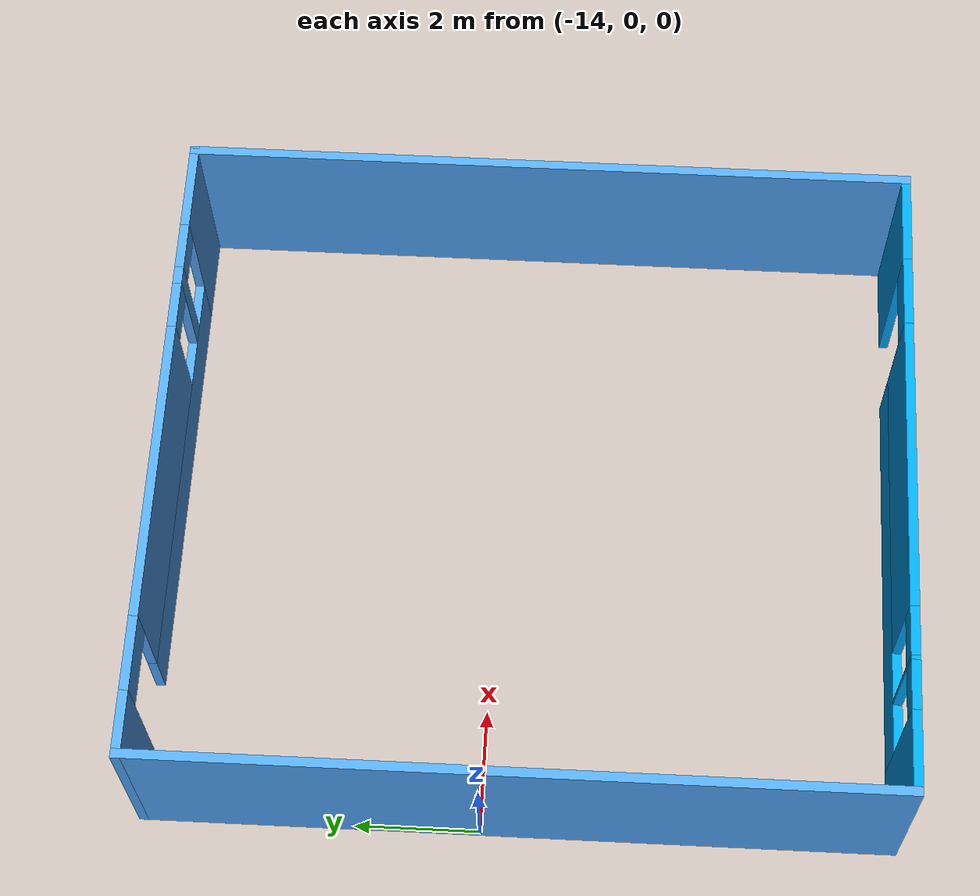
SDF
<?xml version='1.0'?>
<sdf version='1.6'>
  <model name='bluehouse'>
    <pose frame=''>-8.678 -0.573 0 0 -0 0</pose>
    <link name='Wall_5'>
      <collision name='Wall_5_Collision'>
        <geometry>
          <box>
            <size>12 0.15 3</size>
          </box>
        </geometry>
        <pose frame=''>0 0 1.5 0 -0 0</pose>
      </collision>
      <visual name='Wall_5_Visual'>
        <pose frame=''>0 0 1.5 0 -0 0</pose>
        <geometry>
          <box>
            <size>12 0.15 3</size>
          </box>
        </geometry>
        <material>
          <script>
            <uri>file://media/materials/scripts/gazebo.material</uri>
            <name>Gazebo/Grey</name>
          </script>
          <ambient>0.333333 0.666667 1 1</ambient>
        </material>
        <meta>
          <layer>0</layer>
        </meta>
      </visual>
      <pose frame=''>-5.3 0 0 0 0 -1.5708</pose>
    </link>
    <link name='Wall_6'>
      <pose frame=''>-1e-06 -5.925 0 0 -0 0</pose>
      <visual name='Wall_6_Visual_0'>
        <pose frame=''>-4.69968 0 1.5 0 -0 0</pose>
        <geometry>
          <box>
            <size>1.35065 0.15 3</size>
          </box>
        </geometry>
        <material>
          <script>
            <uri>file://media/materials/scripts/gazebo.material</uri>
            <name>Gazebo/Grey</name>
          </script>
          <ambient>0 0.666667 1 1</ambient>
        </material>
        <meta>
          <layer>0</layer>
        </meta>
      </visual>
      <collision name='Wall_6_Collision_0'>
        <geometry>
          <box>
            <size>1.35065 0.15 3</size>
          </box>
        </geometry>
        <pose frame=''>-4.69968 0 1.5 0 -0 0</pose>
      </collision>
      <visual name='Wall_6_Visual_1'>
        <pose frame=''>4.574 0 1.5 0 -0 0</pose>
        <geometry>
          <box>
            <size>1.602 0.15 3</size>
          </box>
        </geometry>
        <material>
          <script>
            <uri>file://media/materials/scripts/gazebo.material</uri>
            <name>Gazebo/Grey</name>
          </script>
          <ambient>0 0.666667 1 1</ambient>
        </material>
        <meta>
          <layer>0</layer>
        </meta>
      </visual>
      <collision name='Wall_6_Collision_1'>
        <geometry>
          <box>
            <size>1.602 0.15 3</size>
          </box>
        </geometry>
        <pose frame=''>4.574 0 1.5 0 -0 0</pose>
      </collision>
      <visual name='Wall_6_Visual_2'>
        <pose frame=''>-0.725675 0 0.5 0 -0 0</pose>
        <geometry>
          <box>
            <size>6.59735 0.15 1</size>
          </box>
        </geometry>
        <material>
          <script>
            <uri>file://media/materials/scripts/gazebo.material</uri>
            <name>Gazebo/Grey</name>
          </script>
          <ambient>0 0.666667 1 1</ambient>
        </material>
        <meta>
          <layer>0</layer>
        </meta>
      </visual>
      <collision name='Wall_6_Collision_2'>
        <geometry>
          <box>
            <size>6.59735 0.15 1</size>
          </box>
        </geometry>
        <pose frame=''>-0.725675 0 0.5 0 -0 0</pose>
      </collision>
      <visual name='Wall_6_Visual_3'>
        <pose frame=''>-3.18814 0 2 0 -0 0</pose>
        <geometry>
          <box>
            <size>0.072422 0.15 2</size>
          </box>
        </geometry>
        <material>
          <script>
            <uri>file://media/materials/scripts/gazebo.material</uri>
            <name>Gazebo/Grey</name>
          </script>
          <ambient>0 0.666667 1 1</ambient>
        </material>
        <meta>
          <layer>0</layer>
        </meta>
      </visual>
      <collision name='Wall_6_Collision_3'>
        <geometry>
          <box>
            <size>0.072422 0.15 2</size>
          </box>
        </geometry>
        <pose frame=''>-3.18814 0 2 0 -0 0</pose>
      </collision>
      <visual name='Wall_6_Visual_4'>
        <pose frame=''>0.110536 0 2 0 -0 0</pose>
        <geometry>
          <box>
            <size>4.92493 0.15 2</size>
          </box>
        </geometry>
        <material>
          <script>
            <uri>file://media/materials/scripts/gazebo.material</uri>
            <name>Gazebo/Grey</name>
          </script>
          <ambient>0 0.666667 1 1</ambient>
        </material>
        <meta>
          <layer>0</layer>
        </meta>
      </visual>
      <collision name='Wall_6_Collision_4'>
        <geometry>
          <box>
            <size>4.92493 0.15 2</size>
          </box>
        </geometry>
        <pose frame=''>0.110536 0 2 0 -0 0</pose>
      </collision>
      <visual name='Wall_6_Visual_5'>
        <pose frame=''>3.173 0 2.65 0 -0 0</pose>
        <geometry>
          <box>
            <size>1.2 0.15 0.7</size>
          </box>
        </geometry>
        <material>
          <script>
            <uri>file://media/materials/scripts/gazebo.material</uri>
            <name>Gazebo/Grey</name>
          </script>
          <ambient>0 0.666667 1 1</ambient>
        </material>
        <meta>
          <layer>0</layer>
        </meta>
      </visual>
      <collision name='Wall_6_Collision_5'>
        <geometry>
          <box>
            <size>1.2 0.15 0.7</size>
          </box>
        </geometry>
        <pose frame=''>3.173 0 2.65 0 -0 0</pose>
      </collision>
      <visual name='Wall_6_Visual_6'>
        <pose frame=''>-3.62435 0 2.75 0 -0 0</pose>
        <geometry>
          <box>
            <size>0.8 0.15 0.5</size>
          </box>
        </geometry>
        <material>
          <script>
            <uri>file://media/materials/scripts/gazebo.material</uri>
            <name>Gazebo/Grey</name>
          </script>
          <ambient>0 0.666667 1 1</ambient>
        </material>
        <meta>
          <layer>0</layer>
        </meta>
      </visual>
      <collision name='Wall_6_Collision_6'>
        <geometry>
          <box>
            <size>0.8 0.15 0.5</size>
          </box>
        </geometry>
        <pose frame=''>-3.62435 0 2.75 0 -0 0</pose>
      </collision>
      <visual name='Wall_6_Visual_7'>
        <pose frame=''>-2.75193 0 2.75 0 -0 0</pose>
        <geometry>
          <box>
            <size>0.8 0.15 0.5</size>
          </box>
        </geometry>
        <material>
          <script>
            <uri>file://media/materials/scripts/gazebo.material</uri>
            <name>Gazebo/Grey</name>
          </script>
          <ambient>0 0.666667 1 1</ambient>
        </material>
        <meta>
          <layer>0</layer>
        </meta>
      </visual>
      <collision name='Wall_6_Collision_7'>
        <geometry>
          <box>
            <size>0.8 0.15 0.5</size>
          </box>
        </geometry>
        <pose frame=''>-2.75193 0 2.75 0 -0 0</pose>
      </collision>
    </link>
    <link name='Wall_7'>
      <collision name='Wall_7_Collision'>
        <geometry>
          <box>
            <size>12 0.15 3</size>
          </box>
        </geometry>
        <pose frame=''>0 0 1.5 0 -0 0</pose>
      </collision>
      <visual name='Wall_7_Visual'>
        <pose frame=''>0 0 1.5 0 -0 0</pose>
        <geometry>
          <box>
            <size>12 0.15 3</size>
          </box>
        </geometry>
        <material>
          <script>
            <uri>file://media/materials/scripts/gazebo.material</uri>
            <name>Gazebo/Grey</name>
          </script>
          <ambient>0.333333 0.666667 1 1</ambient>
        </material>
        <meta>
          <layer>0</layer>
        </meta>
      </visual>
      <pose frame=''>5.3 0 0 0 -0 1.5708</pose>
    </link>
    <link name='Wall_8'>
      <pose frame=''>-1e-06 5.925 0 0 -0 3.14159</pose>
      <visual name='Wall_8_Visual_0'>
        <pose frame=''>-4.6064 0 1.5 0 -0 0</pose>
        <geometry>
          <box>
            <size>1.5372 0.15 3</size>
          </box>
        </geometry>
        <material>
          <script>
            <uri>file://media/materials/scripts/gazebo.material</uri>
            <name>Gazebo/Grey</name>
          </script>
          <ambient>0.333333 0.666667 1 1</ambient>
        </material>
        <meta>
          <layer>0</layer>
        </meta>
      </visual>
      <collision name='Wall_8_Collision_0'>
        <geometry>
          <box>
            <size>1.5372 0.15 3</size>
          </box>
        </geometry>
        <pose frame=''>-4.6064 0 1.5 0 -0 0</pose>
      </collision>
      <visual name='Wall_8_Visual_1'>
        <pose frame=''>4.83935 0 1.5 0 -0 0</pose>
        <geometry>
          <box>
            <size>1.0713 0.15 3</size>
          </box>
        </geometry>
        <material>
          <script>
            <uri>file://media/materials/scripts/gazebo.material</uri>
            <name>Gazebo/Grey</name>
          </script>
          <ambient>0.333333 0.666667 1 1</ambient>
        </material>
        <meta>
          <layer>0</layer>
        </meta>
      </visual>
      <collision name='Wall_8_Collision_1'>
        <geometry>
          <box>
            <size>1.0713 0.15 3</size>
          </box>
        </geometry>
        <pose frame=''>4.83935 0 1.5 0 -0 0</pose>
      </collision>
      <visual name='Wall_8_Visual_2'>
        <pose frame=''>-0.367049 0 0.5 0 -0 0</pose>
        <geometry>
          <box>
            <size>6.9415 0.15 1</size>
          </box>
        </geometry>
        <material>
          <script>
            <uri>file://media/materials/scripts/gazebo.material</uri>
            <name>Gazebo/Grey</name>
          </script>
          <ambient>0.333333 0.666667 1 1</ambient>
        </material>
        <meta>
          <layer>0</layer>
        </meta>
      </visual>
      <collision name='Wall_8_Collision_2'>
        <geometry>
          <box>
            <size>6.9415 0.15 1</size>
          </box>
        </geometry>
        <pose frame=''>-0.367049 0 0.5 0 -0 0</pose>
      </collision>
      <visual name='Wall_8_Visual_3'>
        <pose frame=''>-2.88235 0 2 0 -0 0</pose>
        <geometry>
          <box>
            <size>0.3109 0.15 2</size>
          </box>
        </geometry>
        <material>
          <script>
            <uri>file://media/materials/scripts/gazebo.material</uri>
            <name>Gazebo/Grey</name>
          </script>
          <ambient>0.333333 0.666667 1 1</ambient>
        </material>
        <meta>
          <layer>0</layer>
        </meta>
      </visual>
      <collision name='Wall_8_Collision_3'>
        <geometry>
          <box>
            <size>0.3109 0.15 2</size>
          </box>
        </geometry>
        <pose frame=''>-2.88235 0 2 0 -0 0</pose>
      </collision>
      <visual name='Wall_8_Visual_4'>
        <pose frame=''>0.588401 0 2 0 -0 0</pose>
        <geometry>
          <box>
            <size>5.0306 0.15 2</size>
          </box>
        </geometry>
        <material>
          <script>
            <uri>file://media/materials/scripts/gazebo.material</uri>
            <name>Gazebo/Grey</name>
          </script>
          <ambient>0.333333 0.666667 1 1</ambient>
        </material>
        <meta>
          <layer>0</layer>
        </meta>
      </visual>
      <collision name='Wall_8_Collision_4'>
        <geometry>
          <box>
            <size>5.0306 0.15 2</size>
          </box>
        </geometry>
        <pose frame=''>0.588401 0 2 0 -0 0</pose>
      </collision>
      <visual name='Wall_8_Visual_5'>
        <pose frame=''>3.7037 0 2.65 0 -0 0</pose>
        <geometry>
          <box>
            <size>1.2 0.15 0.7</size>
          </box>
        </geometry>
        <material>
          <script>
            <uri>file://media/materials/scripts/gazebo.material</uri>
            <name>Gazebo/Grey</name>
          </script>
          <ambient>0.333333 0.666667 1 1</ambient>
        </material>
        <meta>
          <layer>0</layer>
        </meta>
      </visual>
      <collision name='Wall_8_Collision_5'>
        <geometry>
          <box>
            <size>1.2 0.15 0.7</size>
          </box>
        </geometry>
        <pose frame=''>3.7037 0 2.65 0 -0 0</pose>
      </collision>
      <visual name='Wall_8_Visual_6'>
        <pose frame=''>-3.4378 0 2.75 0 -0 0</pose>
        <geometry>
          <box>
            <size>0.8 0.15 0.5</size>
          </box>
        </geometry>
        <material>
          <script>
            <uri>file://media/materials/scripts/gazebo.material</uri>
            <name>Gazebo/Grey</name>
          </script>
          <ambient>0.333333 0.666667 1 1</ambient>
        </material>
        <meta>
          <layer>0</layer>
        </meta>
      </visual>
      <collision name='Wall_8_Collision_6'>
        <geometry>
          <box>
            <size>0.8 0.15 0.5</size>
          </box>
        </geometry>
        <pose frame=''>-3.4378 0 2.75 0 -0 0</pose>
      </collision>
      <visual name='Wall_8_Visual_7'>
        <pose frame=''>-2.3269 0 2.75 0 -0 0</pose>
        <geometry>
          <box>
            <size>0.8 0.15 0.5</size>
          </box>
        </geometry>
        <material>
          <script>
            <uri>file://media/materials/scripts/gazebo.material</uri>
            <name>Gazebo/Grey</name>
          </script>
          <ambient>0.333333 0.666667 1 1</ambient>
        </material>
        <meta>
          <layer>0</layer>
        </meta>
      </visual>
      <collision name='Wall_8_Collision_7'>
        <geometry>
          <box>
            <size>0.8 0.15 0.5</size>
          </box>
        </geometry>
        <pose frame=''>-2.3269 0 2.75 0 -0 0</pose>
      </collision>
    </link>
    <static>1</static>
  </model>
</sdf>
